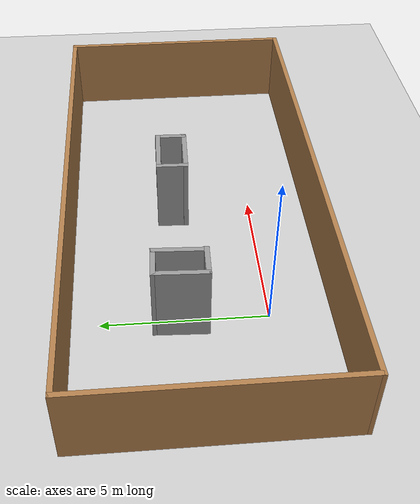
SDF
<sdf version="1.6">
 <world name="default">
  <light name="sun" type="directional">
   <pose>0 0 10 0 -0 0</pose>
   <diffuse>0.8 0.8 0.8 1</diffuse>
   <specular>0.2 0.2 0.2 1</specular>
   <attenuation>
    <range>1000</range>
    <constant>0.9</constant>
    <linear>0.01</linear>
    <quadratic>0.001</quadratic>
   </attenuation>
   <direction>-0.5 0.1 -0.9</direction>
  </light>
  <model name="ground_plane">
   <static>1</static>
   <link name="link">
    <collision name="collision">
     <geometry><plane><normal>0 0 1</normal><size>100 100</size></plane></geometry>
     <surface><friction><ode><mu>100</mu><mu2>50</mu2></ode></friction></surface>
    </collision>
    <visual name="visual">
     <cast_shadows>0</cast_shadows>
     <geometry><plane><normal>0 0 1</normal><size>100 100</size></plane></geometry>
     <material>
      <script><uri>file://media/materials/scripts/gazebo.material</uri><name>Gazebo/Grey</name></script>
     </material>
    </visual>
   </link>
  </model>
  <gravity>0 0 -9.8</gravity>
  <magnetic_field>6e-06 2.3e-05 -4.2e-05</magnetic_field>
  <atmosphere type="adiabatic"/>
  <physics name="default_physics" default="0" type="ode">
   <max_step_size>0.001</max_step_size>
   <real_time_factor>1</real_time_factor>
   <real_time_update_rate>1000</real_time_update_rate>
  </physics>
  <scene><ambient>0.4 0.4 0.4 1</ambient><background>0.7 0.7 0.7 1</background><shadows>1</shadows></scene>
  <audio><device>default</device></audio>
  <spherical_coordinates>
   <surface_model>EARTH_WGS84</surface_model>
   <latitude_deg>0</latitude_deg>
   <longitude_deg>0</longitude_deg>
   <elevation>0</elevation>
   <heading_deg>0</heading_deg>
  </spherical_coordinates>
  <model name="24_1_29_2">
   <pose>4 2 0 0 -0 0</pose>
   <link name="Wall_0">
    <collision name="Wall_0_Collision">
     <geometry><box><size>7.9468 0.15 2.5</size></box></geometry>
     <pose>0 0 1.25 0 -0 0</pose>
    </collision>
    <visual name="Wall_0_Visual">
     <pose>0 0 1.25 0 -0 0</pose>
     <geometry><box><size>7.9468 0.15 2.5</size></box></geometry>
     <material>
      <script><uri>file://media/materials/scripts/gazebo.material</uri><name>Gazebo/Wood</name></script>
      <ambient>1 1 1 1</ambient>
     </material>
     <meta><layer>0</layer></meta>
    </visual>
    <pose>-8.0353 -0.006836 0 0 -0 -1.56739</pose>
   </link>
   <link name="Wall_1">
    <collision name="Wall_1_Collision">
     <geometry><box><size>16.2206 0.15 2.5</size></box></geometry>
     <pose>0 0 1.25 0 -0 0</pose>
    </collision>
    <visual name="Wall_1_Visual">
     <pose>0 0 1.25 0 -0 0</pose>
     <geometry><box><size>16.2206 0.15 2.5</size></box></geometry>
     <material>
      <script><uri>file://media/materials/scripts/gazebo.material</uri><name>Gazebo/Wood</name></script>
      <ambient>1 1 1 1</ambient>
     </material>
     <meta><layer>0</layer></meta>
    </visual>
    <pose>0.0133 -3.91172 0 0 -0 0.002503</pose>
   </link>
   <link name="Wall_10">
    <collision name="Wall_10_Collision">
     <geometry><box><size>1.00024 0.15 2.5</size></box></geometry>
     <pose>0 0 1.25 0 -0 0</pose>
    </collision>
    <visual name="Wall_10_Visual">
     <pose>0 0 1.25 0 -0 0</pose>
     <geometry><box><size>1.00024 0.15 2.5</size></box></geometry>
     <material>
      <script><uri>file://media/materials/scripts/gazebo.material</uri><name>Gazebo/Grey</name></script>
      <ambient>1 1 1 1</ambient>
     </material>
     <meta><layer>0</layer></meta>
    </visual>
    <pose>0.254084 0.59681 0 0 -0 -1.59445</pose>
   </link>
   <link name="Wall_11">
    <collision name="Wall_11_Collision">
     <geometry><box><size>1.72756 0.15 2.5</size></box></geometry>
     <pose>0 0 1.25 0 -0 0</pose>
    </collision>
    <visual name="Wall_11_Visual">
     <pose>0 0 1.25 0 -0 0</pose>
     <geometry><box><size>1.72756 0.15 2.5</size></box></geometry>
     <material>
      <script><uri>file://media/materials/scripts/gazebo.material</uri><name>Gazebo/Grey</name></script>
      <ambient>1 1 1 1</ambient>
     </material>
     <meta><layer>0</layer></meta>
    </visual>
    <pose>1.01244 0.151696 0 0 -0 -0.025502</pose>
   </link>
   <link name="Wall_12">
    <collision name="Wall_12_Collision">
     <geometry><box><size>1.00024 0.15 2.5</size></box></geometry>
     <pose>0 0 1.25 0 -0 0</pose>
    </collision>
    <visual name="Wall_12_Visual">
     <pose>0 0 1.25 0 -0 0</pose>
     <geometry><box><size>1.00024 0.15 2.5</size></box></geometry>
     <material>
      <script><uri>file://media/materials/scripts/gazebo.material</uri><name>Gazebo/Grey</name></script>
      <ambient>1 1 1 1</ambient>
     </material>
     <meta><layer>0</layer></meta>
    </visual>
    <pose>1.81102 0.576696 0 0 -0 1.54714</pose>
   </link>
   <link name="Wall_13">
    <collision name="Wall_13_Collision">
     <geometry><box><size>1.68735 0.15 2.5</size></box></geometry>
     <pose>0 0 1.25 0 -0 0</pose>
    </collision>
    <visual name="Wall_13_Visual">
     <pose>0 0 1.25 0 -0 0</pose>
     <geometry><box><size>1.68735 0.15 2.5</size></box></geometry>
     <material>
      <script><uri>file://media/materials/scripts/gazebo.material</uri><name>Gazebo/Grey</name></script>
      <ambient>1 1 1 1</ambient>
     </material>
     <meta><layer>0</layer></meta>
    </visual>
    <pose>1.05266 1.0017 0 0 -0 3.11542</pose>
   </link>
   <link name="Wall_2">
    <collision name="Wall_2_Collision">
     <geometry><box><size>7.95329 0.15 2.5</size></box></geometry>
     <pose>0 0 1.25 0 -0 0</pose>
    </collision>
    <visual name="Wall_2_Visual">
     <pose>0 0 1.25 0 -0 0</pose>
     <geometry><box><size>7.95329 0.15 2.5</size></box></geometry>
     <material>
      <script><uri>file://media/materials/scripts/gazebo.material</uri><name>Gazebo/Wood</name></script>
      <ambient>1 1 1 1</ambient>
     </material>
     <meta><layer>0</layer></meta>
    </visual>
    <pose>8.0353 0.030148 0 0 -0 1.57421</pose>
   </link>
   <link name="Wall_3">
    <collision name="Wall_3_Collision">
     <geometry><box><size>16.2206 0.15 2.5</size></box></geometry>
     <pose>0 0 1.25 0 -0 0</pose>
    </collision>
    <visual name="Wall_3_Visual">
     <pose>0 0 1.25 0 -0 0</pose>
     <geometry><box><size>16.2206 0.15 2.5</size></box></geometry>
     <material>
      <script><uri>file://media/materials/scripts/gazebo.material</uri><name>Gazebo/Wood</name></script>
      <ambient>1 1 1 1</ambient>
     </material>
     <meta><layer>0</layer></meta>
    </visual>
    <pose>0.0133 3.91168 0 0 -0 -3.13909</pose>
   </link>
   <link name="Wall_5">
    <collision name="Wall_5_Collision">
     <geometry><box><size>1.64202 0.15 2.5</size></box></geometry>
     <pose>0 0 1.25 0 -0 0</pose>
    </collision>
    <visual name="Wall_5_Visual">
     <pose>0 0 1.25 0 -0 0</pose>
     <geometry><box><size>1.64202 0.15 2.5</size></box></geometry>
     <material>
      <script><uri>file://media/materials/scripts/gazebo.material</uri><name>Gazebo/Grey</name></script>
      <ambient>1 1 1 1</ambient>
     </material>
     <meta><layer>0</layer></meta>
    </visual>
    <pose>-4.41226 0.618343 0 0 -0 -1.61125</pose>
   </link>
   <link name="Wall_6">
    <collision name="Wall_6_Collision">
     <geometry><box><size>1.02898 0.15 2.5</size></box></geometry>
     <pose>0 0 1.25 0 -0 0</pose>
    </collision>
    <visual name="Wall_6_Visual">
     <pose>0 0 1.25 0 -0 0</pose>
     <geometry><box><size>1.02898 0.15 2.5</size></box></geometry>
     <material>
      <script><uri>file://media/materials/scripts/gazebo.material</uri><name>Gazebo/Grey</name></script>
      <ambient>1 1 1 1</ambient>
     </material>
     <meta><layer>0</layer></meta>
    </visual>
    <pose>-3.98295 -0.137111 0 0 -0 -0.022885</pose>
   </link>
   <link name="Wall_7">
    <collision name="Wall_7_Collision">
     <geometry><box><size>1.64202 0.15 2.5</size></box></geometry>
     <pose>0 0 1.25 0 -0 0</pose>
    </collision>
    <visual name="Wall_7_Visual">
     <pose>0 0 1.25 0 -0 0</pose>
     <geometry><box><size>1.64202 0.15 2.5</size></box></geometry>
     <material>
      <script><uri>file://media/materials/scripts/gazebo.material</uri><name>Gazebo/Grey</name></script>
      <ambient>1 1 1 1</ambient>
     </material>
     <meta><layer>0</layer></meta>
    </visual>
    <pose>-3.53351 0.598229 0 0 -0 1.53034</pose>
   </link>
   <link name="Wall_8">
    <collision name="Wall_8_Collision">
     <geometry><box><size>1.02898 0.15 2.5</size></box></geometry>
     <pose>0 0 1.25 0 -0 0</pose>
    </collision>
    <visual name="Wall_8_Visual">
     <pose>0 0 1.25 0 -0 0</pose>
     <geometry><box><size>1.02898 0.15 2.5</size></box></geometry>
     <material>
      <script><uri>file://media/materials/scripts/gazebo.material</uri><name>Gazebo/Grey</name></script>
      <ambient>1 1 1 1</ambient>
     </material>
     <meta><layer>0</layer></meta>
    </visual>
    <pose>-3.94272 1.3738 0 0 -0 3.11871</pose>
   </link>
   <static>1</static>
  </model>
 </world>
</sdf>
